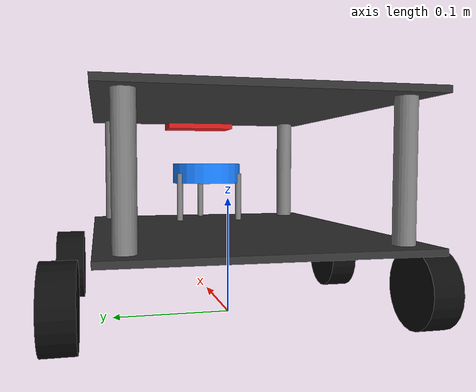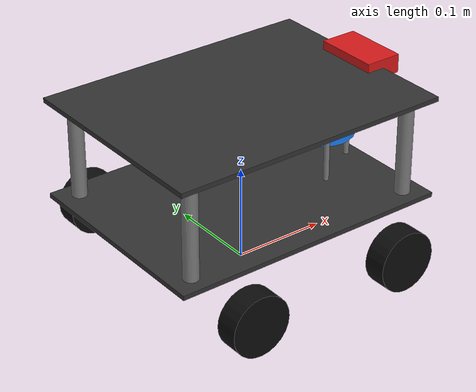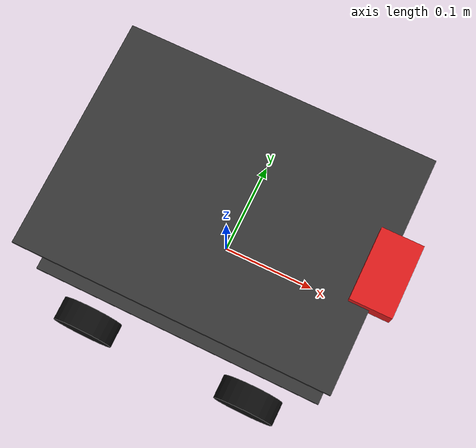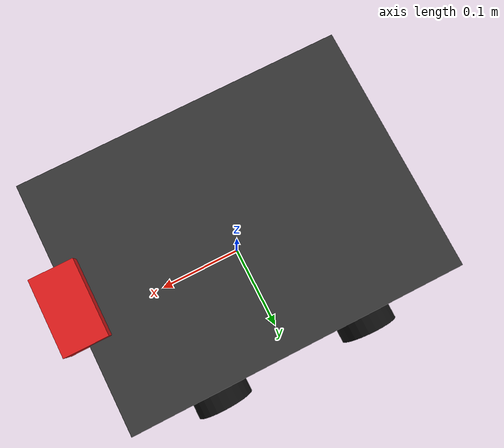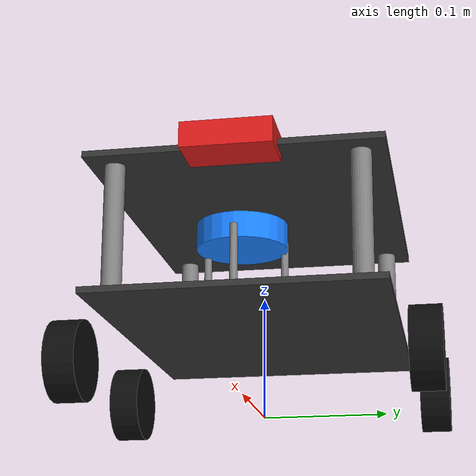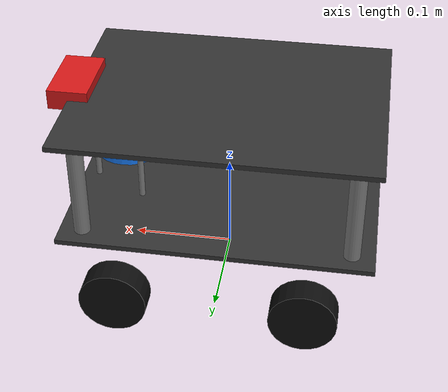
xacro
<?xml version="1.0"?>
<robot xmlns:xacro="http://www.ros.org/wiki/xacro" name="diff_drive_robot">

	<!-- Physical parameters (measured / calibrated)             -->

	<xacro:property name="chassis_length" value="0.305"/>  <!-- m, measured -->
	<xacro:property name="chassis_width"  value="0.230"/>  <!-- m, measured -->
	<xacro:property name="upper_plate_z"  value="0.178"/>  <!-- m, upper plate above ground -->
	<xacro:property name="lower_plate_z"  value="0.071"/>  <!-- m, lower plate above ground -->
	<xacro:property name="plate_thickness" value="0.005"/>  <!-- m, acrylic plate -->

	<xacro:property name="wheel_radius"   value="0.0323"/> <!-- m, calibrated -->
	<xacro:property name="wheel_width"    value="0.025"/>  <!-- m, measured -->
	<xacro:property name="wheel_mass"     value="0.05"/>   <!-- kg each -->
	<xacro:property name="base_mass"      value="3.0"/>    <!-- kg, estimate -->

	<!-- WHEEL_BASE (track) = 0.275 (calibrated), wheelbase = 0.180 (measured) -->
	<xacro:property name="track_width"    value="0.275"/>
	<xacro:property name="wheelbase"      value="0.180"/>
	<xacro:property name="wheel_offset_x" value="${wheelbase / 2}"/>
	<xacro:property name="wheel_offset_y" value="${track_width / 2}"/>

	<!-- Chassis pillar positions (corners) -->
	<xacro:property name="pillar_x" value="0.130"/>
	<xacro:property name="pillar_y" value="0.095"/>
	<xacro:property name="pillar_radius" value="0.008"/>
	<xacro:property name="pillar_z_mid" value="${(lower_plate_z + upper_plate_z) / 2}"/>
	<xacro:property name="pillar_length" value="${upper_plate_z - lower_plate_z}"/>

	<!-- Sensor positions: absolute above ground (used for computing relative z) -->
	<xacro:property name="laser_x"       value="0.1025"/>
	<xacro:property name="laser_z_world" value="0.121"/>
	<xacro:property name="camera_x"      value="0.1525"/>
	<xacro:property name="camera_z_world" value="0.180"/>
	<xacro:property name="imu_x"         value="0.0325"/>
	<xacro:property name="imu_y"         value="0.0"/>
	<xacro:property name="imu_z_world"   value="0.178"/>

	<!-- Z offsets in base_link frame (= world - wheel_radius) -->
	<xacro:property name="lower_z"      value="${lower_plate_z - wheel_radius}"/>
	<xacro:property name="upper_z"      value="${upper_plate_z - wheel_radius}"/>
	<xacro:property name="pillar_z_mid" value="${(lower_z + upper_z) / 2}"/>
	<xacro:property name="laser_z"      value="${laser_z_world - wheel_radius}"/>
	<xacro:property name="camera_z"     value="${camera_z_world - wheel_radius}"/>
	<xacro:property name="imu_z"        value="${imu_z_world - wheel_radius}"/>
	<xacro:property name="lidar_pillar_mid" value="${(lower_z + laser_z) / 2}"/>

	<!-- Inertia macros                                         -->

	<xacro:macro name="box_inertia" params="m l w h">
		<inertial>
			<origin xyz="0 0 0" rpy="0 0 0"/>
			<mass value="${m}"/>
			<inertia
				ixx="${m*(w*w+h*h)/12}" ixy="0" ixz="0"
				iyy="${m*(l*l+h*h)/12}" iyz="0"
				izz="${m*(l*l+w*w)/12}"/>
		</inertial>
	</xacro:macro>

	<xacro:macro name="cylinder_inertia" params="m r h">
		<inertial>
			<origin xyz="0 0 0" rpy="0 0 0"/>
			<mass value="${m}"/>
			<inertia
				ixx="${m*(3*r*r+h*h)/12}" ixy="0" ixz="0"
				iyy="${m*(3*r*r+h*h)/12}" iyz="0"
				izz="${m*r*r/2}"/>
		</inertial>
	</xacro:macro>

	<!-- tiny inertia for visual-only links (Gazebo requires it) -->
	<xacro:macro name="tiny_inertia" params="">
		<inertial>
			<origin xyz="0 0 0" rpy="0 0 0"/>
			<mass value="0.001"/>
			<inertia ixx="1e-8" ixy="0" ixz="0" iyy="1e-8" iyz="0" izz="1e-8"/>
		</inertial>
	</xacro:macro>

	<!-- Materials                                              -->
	<material name="dark_grey">  <color rgba="0.2 0.2 0.2 1"/></material>
	<material name="mid_grey">   <color rgba="0.35 0.35 0.35 1"/></material>
	<material name="light_grey"> <color rgba="0.5 0.5 0.5 1"/></material>
	<material name="black">      <color rgba="0.05 0.05 0.05 1"/></material>
	<material name="blue">       <color rgba="0.1 0.5 1.0 1"/></material>
	<material name="red">        <color rgba="0.85 0.1 0.1 1"/></material>

	<!-- base_footprint → base_link                              -->

	<link name="base_footprint"/>

	<joint name="footprint_joint" type="fixed">
		<parent link="base_footprint"/>
		<child link="base_link"/>
		<origin xyz="0 0 ${wheel_radius}" rpy="0 0 0"/>
	</joint>

	<!-- base_link (no visual — plates + pillars provide that)  -->
	<!-- Collision starts ABOVE wheels to avoid overlap          -->

	<link name="base_link">
		<xacro:box_inertia m="${base_mass}" l="${chassis_length}"
			w="${chassis_width}" h="${upper_plate_z}"/>
	</link>

	<!-- Lower plate (visual + inertia)                          -->

	<link name="chassis_lower">
		<visual>
			<geometry>
				<box size="${chassis_length} ${chassis_width} ${plate_thickness}"/>
			</geometry>
			<material name="dark_grey"/>
		</visual>
		<collision>
			<geometry>
				<box size="${chassis_length} ${chassis_width} ${plate_thickness}"/>
			</geometry>
		</collision>
		<xacro:tiny_inertia/>
	</link>
	<joint name="chassis_lower_joint" type="fixed">
		<parent link="base_link"/>
		<child link="chassis_lower"/>
		<origin xyz="0 0 ${lower_z}" rpy="0 0 0"/>
	</joint>

	<!-- Upper plate (visual + inertia)                          -->

	<link name="chassis_upper">
		<visual>
			<geometry>
				<box size="${chassis_length} ${chassis_width} ${plate_thickness}"/>
			</geometry>
			<material name="dark_grey"/>
		</visual>
		<collision>
			<geometry>
				<box size="${chassis_length} ${chassis_width} ${plate_thickness}"/>
			</geometry>
		</collision>
		<xacro:tiny_inertia/>
	</link>
	<joint name="chassis_upper_joint" type="fixed">
		<parent link="base_link"/>
		<child link="chassis_upper"/>
		<origin xyz="0 0 ${upper_z}" rpy="0 0 0"/>
	</joint>

	<!-- 4 chassis pillars (visual + inertia)                    -->

	<xacro:macro name="pillar" params="name x y">
		<link name="${name}">
			<visual>
				<geometry>
					<cylinder radius="${pillar_radius}" length="${pillar_length}"/>
				</geometry>
				<material name="light_grey"/>
			</visual>
			<xacro:tiny_inertia/>
		</link>
		<joint name="${name}_joint" type="fixed">
			<parent link="base_link"/>
			<child link="${name}"/>
			<origin xyz="${x} ${y} ${pillar_z_mid}" rpy="0 0 0"/>
		</joint>
	</xacro:macro>

	<xacro:pillar name="pillar_fl" x="${pillar_x}"  y="${pillar_y}"/>
	<xacro:pillar name="pillar_fr" x="${pillar_x}"  y="${-pillar_y}"/>
	<xacro:pillar name="pillar_rl" x="${-pillar_x}" y="${pillar_y}"/>
	<xacro:pillar name="pillar_rr" x="${-pillar_x}" y="${-pillar_y}"/>

	<!-- 4× Wheels (continuous joints, collision + inertia)     -->

	<xacro:macro name="wheel" params="name x y">
		<link name="${name}">
			<visual>
				<geometry>
					<cylinder radius="${wheel_radius}" length="${wheel_width}"/>
				</geometry>
				<origin xyz="0 0 0" rpy="${pi/2} 0 0"/>
				<material name="black"/>
			</visual>
			<collision>
				<geometry>
					<cylinder radius="${wheel_radius}" length="${wheel_width}"/>
				</geometry>
				<origin xyz="0 0 0" rpy="${pi/2} 0 0"/>
			</collision>
			<xacro:cylinder_inertia m="${wheel_mass}" r="${wheel_radius}" h="${wheel_width}"/>
		</link>

		<joint name="${name}_joint" type="continuous">
			<parent link="base_link"/>
			<child link="${name}"/>
			<origin xyz="${x} ${y} 0" rpy="0 0 0"/>
			<axis xyz="0 1 0"/>
			<limit effort="100" velocity="10"/>
		</joint>
	</xacro:macro>

	<xacro:wheel name="wheel_lf" x="${wheel_offset_x}"  y="${wheel_offset_y}"/>
	<xacro:wheel name="wheel_lr" x="${-wheel_offset_x}" y="${wheel_offset_y}"/>
	<xacro:wheel name="wheel_rf" x="${wheel_offset_x}"  y="${-wheel_offset_y}"/>
	<xacro:wheel name="wheel_rr" x="${-wheel_offset_x}" y="${-wheel_offset_y}"/>

	<!-- RPLIDAR A1: 3 support pillars + cylinder body          -->

	<xacro:macro name="lidar_pillar" params="name x y">
		<link name="${name}">
			<visual>
				<geometry>
					<cylinder radius="0.003" length="${laser_z_world - lower_plate_z}"/>
				</geometry>
				<material name="light_grey"/>
			</visual>
			<xacro:tiny_inertia/>
		</link>
		<joint name="${name}_joint" type="fixed">
			<parent link="base_link"/>
			<child link="${name}"/>
			<origin xyz="${x} ${y} ${lidar_pillar_mid}" rpy="0 0 0"/>
		</joint>
	</xacro:macro>

	<xacro:lidar_pillar name="lidar_pillar_0"   x="0.1375" y="0.0"/>
	<xacro:lidar_pillar name="lidar_pillar_120" x="0.085"  y="0.0303"/>
	<xacro:lidar_pillar name="lidar_pillar_240" x="0.085"  y="-0.0303"/>

	<link name="laser_frame">
		<visual>
			<geometry><cylinder radius="0.035" length="0.02"/></geometry>
			<material name="blue"/>
		</visual>
		<xacro:tiny_inertia/>
	</link>

	<joint name="laser_joint" type="fixed">
		<parent link="base_link"/>
		<child link="laser_frame"/>
		<origin xyz="${laser_x} 0 ${laser_z}" rpy="0 0 0"/>
	</joint>

	<!-- Astra Pro (red box on upper plate front)                -->

	<link name="camera_link">
		<visual>
			<geometry><box size="0.04 0.07 0.02"/></geometry>
			<material name="red"/>
		</visual>
		<xacro:tiny_inertia/>
	</link>
	<joint name="camera_joint" type="fixed">
		<parent link="base_link"/>
		<child link="camera_link"/>
		<origin xyz="${camera_x} 0 ${camera_z}" rpy="0 0 0"/>
	</joint>

	<link name="camera_depth_frame"/>
	<joint name="camera_depth_joint" type="fixed">
		<parent link="camera_link"/>
		<child link="camera_depth_frame"/>
		<origin xyz="0 0 0" rpy="0 0 0"/>
	</joint>

	<link name="camera_color_frame"/>
	<joint name="camera_color_joint" type="fixed">
		<parent link="camera_link"/>
		<child link="camera_color_frame"/>
		<origin xyz="0 0 0" rpy="0 0 0"/>
	</joint>

	<!-- IMU (MPU9250, inside chassis, no visual)                -->

	<link name="imu_link"/>
	<joint name="imu_joint" type="fixed">
		<parent link="base_link"/>
		<child link="imu_link"/>
		<origin xyz="${imu_x} ${imu_y} ${imu_z}" rpy="0 0 0"/>
	</joint>

</robot>
